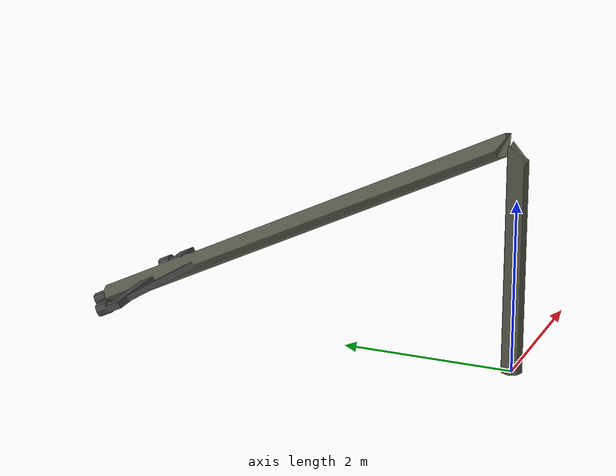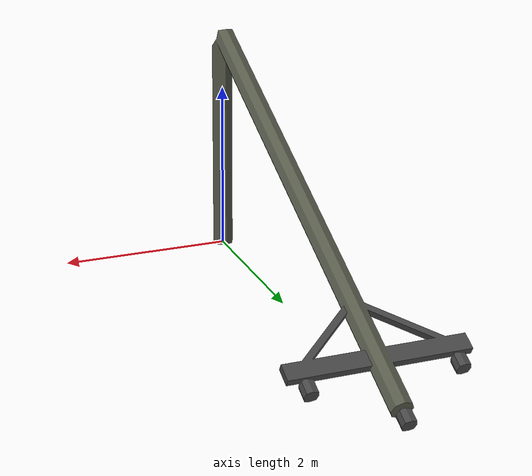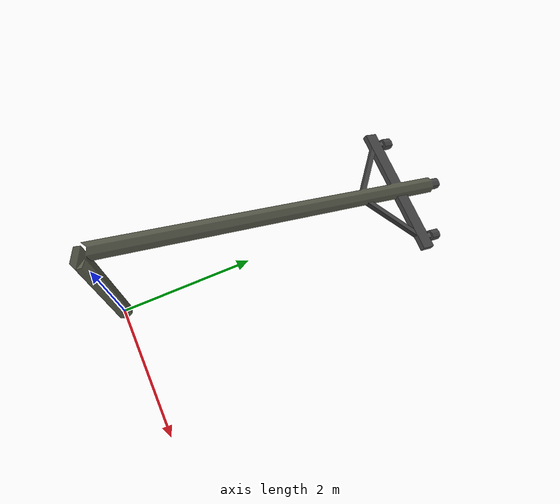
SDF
<?xml version="1.0"?>
<sdf version="1.5">
  <model name="brokepylon_model">
    <static>
      true
    </static>
    <link name="brokepylon_link">
      <inertial>
        <mass>0.390</mass>
        <inertia>
          <ixx>0.00058</ixx>
          <ixy>0</ixy>
          <ixz>0</ixz>
          <iyy>0.00058</iyy>
          <iyz>0</iyz>
          <izz>0.00019</izz>
        </inertia>
      </inertial>
      <collision name="brokepylon_collision">
        <geometry>
          <mesh>
            <uri>model://brokepylon/meshes/brokepylon.dae</uri>
          </mesh>
        </geometry>
        <surface>
          <friction>
            <ode>
              <mu>1.0</mu>
              <mu2>1.0</mu2>
            </ode>
          </friction>
          <contact>
            <ode>
              <kp>10000000.0</kp>
              <kd>1.0</kd>
              <min_depth>0.001</min_depth>
              <max_vel>0.1</max_vel>
            </ode>
          </contact>
        </surface>
      </collision>
      <visual name="brokepylon_visual">
        <geometry>
          <mesh>
            <uri>model://brokepylon/meshes/brokepylon.dae</uri>
          </mesh>
        </geometry>
      </visual>
    </link>
  </model>
</sdf>
